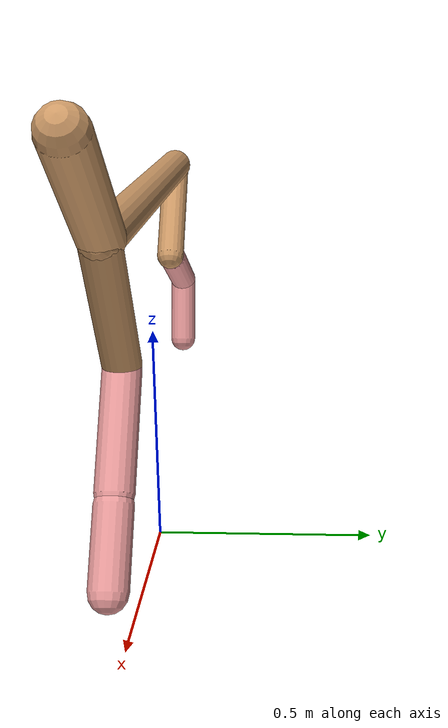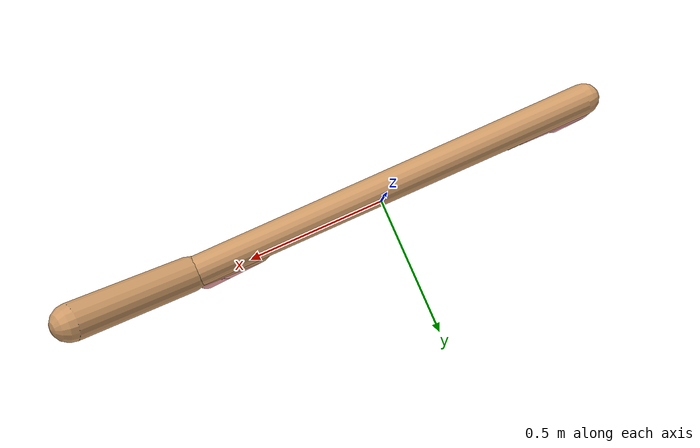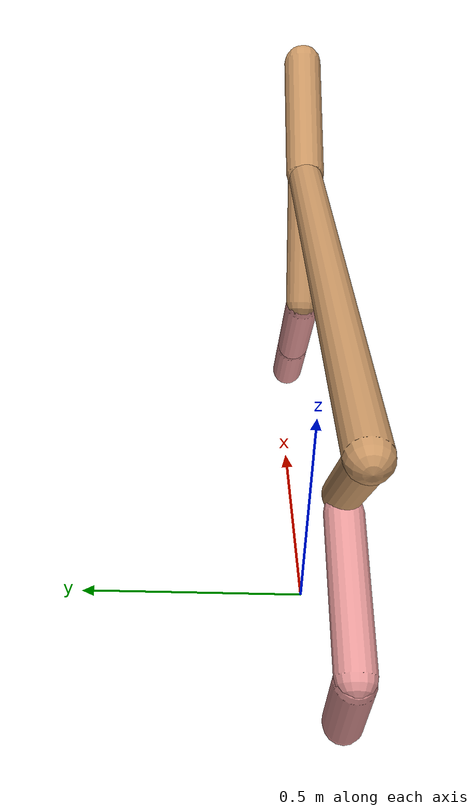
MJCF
<mujoco model="cheetah">
  <compiler angle="radian" coordinate="local" inertiafromgeom="true" settotalmass="14" />
  <default>
    <joint armature=".1" damping=".01" limited="true" solimplimit="0 .8 .03" solreflimit=".02 1" stiffness="8" />
    <geom conaffinity="0" condim="3" contype="1" friction="0.8 .1 .1" rgba="0.8 0.6 .4 1" solimp="0.0 0.8 0.01" solref="0.02 1" />
    <motor ctrllimited="true" ctrlrange="-1 1" />
  </default>
  <size nstack="300000" nuser_geom="1" />
  <option gravity="0 0 -9.81" timestep="0.01" />
  <worldbody>
    <body name="torso" pos="0.0 0.0 0.8079591302514498">
      <joint armature="0" axis="1 0 0" damping="0" limited="false" name="ignorex" pos="0 0 0" stiffness="0" type="slide" />
      <joint armature="0" axis="0 0 1" damping="0" limited="false" name="ignorez" pos="0 0 0" stiffness="0" type="slide" />
      <joint armature="0" axis="0 1 0" damping="0" limited="false" name="ignorey" pos="0 0 0" stiffness="0" type="hinge" />
      <geom fromto="-0.5 0.0 0.0 0.5411848536950203 0.0 0.0" name="torso" size="0.037641672158457026" type="capsule" />
      <geom axisangle="0 1 0 .87" name="head" pos="0.6411848536950203 0.0 0.1" size="0.04323556844737255 0.15" type="capsule" />

      <body name="bthigh" pos="-.5 0 0">
        <joint axis="0 1 0" damping="6" name="bthigh" pos="0 0 0" range="-.52 1.05" stiffness="240" type="hinge" />
        <geom axisangle="0 1 0 -3.8" name="bthigh" pos="0.0855754878341993 0.0 -0.11124813418445909" size="0.03331007284456042 0.12134204102663577" type="capsule" />
        <body name="bshin" pos="0.1311509756683986 0.0 -0.21249626836891816">
          <joint axis="0 1 0" damping="4.5" name="bshin" pos="0 0 0" range="-.785 .785" stiffness="180" type="hinge" />
          <geom axisangle="0 1 0 -2.03" name="bshin" pos="-0.11811001194206476 0.0 -0.05905500597103238" rgba="0.9 0.6 0.6 1" size="0.03331007284456042 0.12552624933789908" type="capsule" />
          <body name="bfoot" pos="-0.23622002388412952 0.0 -0.11811001194206476">
            <joint axis="0 1 0" damping="3" name="bfoot" pos="0 0 0" range="-.4 .785" stiffness="120" type="hinge" />
            <geom axisangle="0 1 0 -.27" name="bfoot" pos="0.025468415208416636 0.0 -0.08234787584054713" rgba="0.9 0.6 0.6 1" size="0.03331007284456042 0.0786631162517501" type="capsule" />
            <inertial mass="10" />
          </body>
        </body>
      </body>
      <body name="fthigh" pos="0.5411848536950203 0.0 0.0">
        <joint axis="0 1 0" damping="4.5" name="fthigh" pos="0 0 0" range="-1.5 0.8" stiffness="180" type="hinge" />
        <geom axisangle="0 1 0 .52" name="fthigh" pos="-0.07756784992751747 0.0 -0.13297345701860136" size="0.037872407748039766 0.14801941874837118" type="capsule" />
        <body name="fshin" pos="-0.15513569985503495 0.0 -0.2659469140372027">
          <joint axis="0 1 0" damping="3" name="fshin" pos="0 0 0" range="-1.2 1.1" stiffness="120" type="hinge" />
          <geom axisangle="0 1 0 -.6" name="fshin" pos="0.07200853493946498 0.0 -0.09970412530079766" rgba="0.9 0.6 0.6 1" size="0.037872407748039766 0.1179703638144913" type="capsule" />
          <body name="ffoot" pos="0.14401706987892995 0.0 -0.1994082506015953">
            <joint axis="0 1 0" damping="1.5" name="ffoot" pos="0 0 0" range="-3.1 -0.3" stiffness="60" type="hinge" />
            <geom axisangle="0 1 0 -.6" name="ffoot" pos="0.04927466563436736 0.0 -0.07664947987568257" rgba="0.9 0.6 0.6 1" size="0.037872407748039766 0.07790495723598484" type="capsule" />
            <inertial mass="10" />
          </body>
        </body>
      </body>
    </body>
  </worldbody>
  <actuator>
    <motor gear="120" joint="bthigh" name="bthigh" />
    <motor gear="90" joint="bshin" name="bshin" />
    <motor gear="60" joint="bfoot" name="bfoot" />
    <motor gear="120" joint="fthigh" name="fthigh" />
    <motor gear="60" joint="fshin" name="fshin" />
    <motor gear="30" joint="ffoot" name="ffoot" />
  </actuator>
</mujoco>
